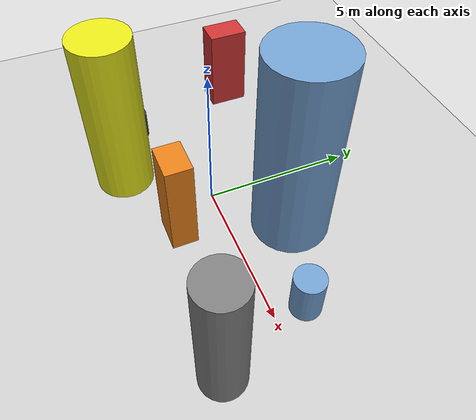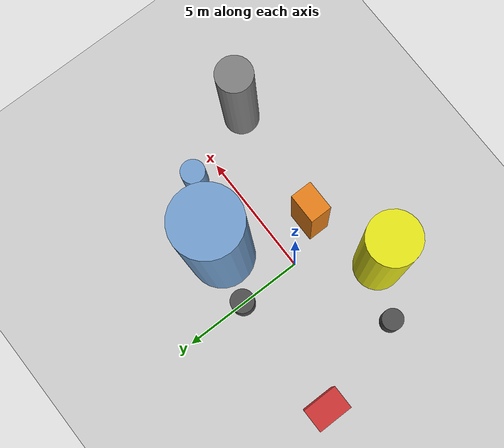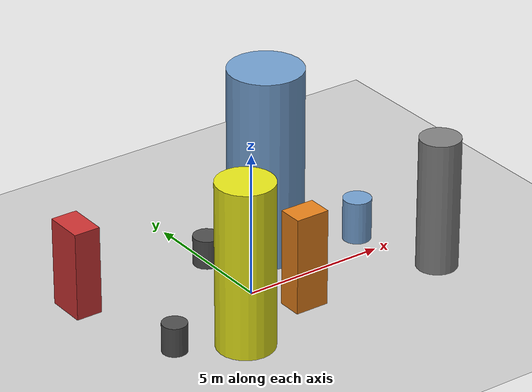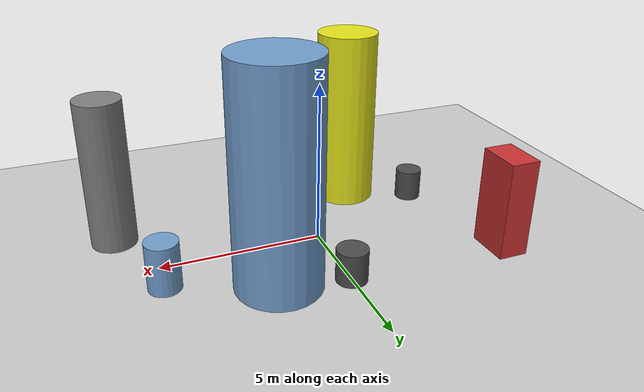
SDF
<?xml version='1.0'?>
<sdf version='1.6'>
  <world name='routeA_rl_v1__support_expansion__rl_train__mixed_3d_low_density_route__000122'>
    <!-- Sun light -->
    <light name='sun' type='directional'>
      <cast_shadows>1</cast_shadows>
      <pose>0 0 10 0 0 0</pose>
      <diffuse>0.8 0.8 0.8 1</diffuse>
      <specular>0.2 0.2 0.2 1</specular>
      <attenuation>
        <range>1000</range>
        <constant>0.9</constant>
        <linear>0.01</linear>
        <quadratic>0.001</quadratic>
      </attenuation>
      <direction>-0.5 0.1 -0.9</direction>
    </light>

    <!-- Ground plane -->
    <model name='ground_plane'>
      <static>1</static>
      <link name='link'>
        <collision name='collision'>
          <geometry>
            <plane>
              <normal>0 0 1</normal>
              <size>100 100</size>
            </plane>
          </geometry>
          <surface>
            <contact>
              <collide_bitmask>65535</collide_bitmask>
              <ode/>
            </contact>
            <friction>
              <ode>
                <mu>100</mu>
                <mu2>50</mu2>
              </ode>
              <torsional><ode/></torsional>
            </friction>
            <bounce/>
          </surface>
          <max_contacts>10</max_contacts>
        </collision>
        <visual name='visual'>
          <cast_shadows>0</cast_shadows>
          <geometry>
            <plane>
              <normal>0 0 1</normal>
              <size>100 100</size>
            </plane>
          </geometry>
          <material>
            <script>
              <uri>file://media/materials/scripts/gazebo.material</uri>
              <n>Gazebo/Grey</n>
            </script>
          </material>
        </visual>
      </link>
    </model>

    <!-- Environment -->
    <magnetic_field>6e-06 2.3e-05 -4.2e-05</magnetic_field>
    <atmosphere type='adiabatic'/>
    <physics name='default_physics' default='0' type='ode'>
      <gravity>0 0 -9.8</gravity>
      <max_step_size>0.004</max_step_size>
      <real_time_factor>1</real_time_factor>
      <real_time_update_rate>250</real_time_update_rate>
    </physics>
    <scene>
      <ambient>0.4 0.4 0.4 1</ambient>
      <background>0.7 0.7 0.7 1</background>
      <shadows>1</shadows>
    </scene>
    <wind/>
    <spherical_coordinates>
      <surface_model>EARTH_WGS84</surface_model>
      <latitude_deg>0</latitude_deg>
      <longitude_deg>0</longitude_deg>
      <elevation>0</elevation>
      <heading_deg>0</heading_deg>
    </spherical_coordinates>

    <!-- ============ OBSTACLES (8) ============ -->
    <model name='low_obs_0'>
      <static>1</static>
      <link name='link'>
        <visual name='visual'>
          <geometry>
            <cylinder>
              <radius>0.4219</radius>
              <length>1.0123</length>
            </cylinder>
          </geometry>
          <material>
            <script>
              <n>Gazebo/DarkGrey</n>
              <uri>file://media/materials/scripts/gazebo.material</uri>
            </script>
            <ambient>0.3 0.3 0.3 1</ambient>
          </material>
        </visual>
        <collision name='collision'>
          <geometry>
            <cylinder>
              <radius>0.4219</radius>
              <length>1.0123</length>
            </cylinder>
          </geometry>
          <max_contacts>10</max_contacts>
          <surface>
            <contact><ode/></contact>
            <bounce/>
            <friction>
              <ode><mu>1</mu><mu2>1</mu2></ode>
              <torsional><ode/></torsional>
            </friction>
          </surface>
        </collision>
      </link>
      <pose>-4.0000 -1.5000 0.5061 0 0 0.0000</pose>
    </model>

    <model name='low_obs_1'>
      <static>1</static>
      <link name='link'>
        <visual name='visual'>
          <geometry>
            <cylinder>
              <radius>0.4690</radius>
              <length>1.0116</length>
            </cylinder>
          </geometry>
          <material>
            <script>
              <n>Gazebo/DarkGrey</n>
              <uri>file://media/materials/scripts/gazebo.material</uri>
            </script>
            <ambient>0.3 0.3 0.3 1</ambient>
          </material>
        </visual>
        <collision name='collision'>
          <geometry>
            <cylinder>
              <radius>0.4690</radius>
              <length>1.0116</length>
            </cylinder>
          </geometry>
          <max_contacts>10</max_contacts>
          <surface>
            <contact><ode/></contact>
            <bounce/>
            <friction>
              <ode><mu>1</mu><mu2>1</mu2></ode>
              <torsional><ode/></torsional>
            </friction>
          </surface>
        </collision>
      </link>
      <pose>0.0000 2.5000 0.5058 0 0 0.0000</pose>
    </model>

    <model name='low_obs_2'>
      <static>1</static>
      <link name='link'>
        <visual name='visual'>
          <geometry>
            <cylinder>
              <radius>0.4885</radius>
              <length>1.4879</length>
            </cylinder>
          </geometry>
          <material>
            <script>
              <n>Gazebo/Blue</n>
              <uri>file://media/materials/scripts/gazebo.material</uri>
            </script>
            <ambient>0.447 0.624 0.812 1</ambient>
          </material>
        </visual>
        <collision name='collision'>
          <geometry>
            <cylinder>
              <radius>0.4885</radius>
              <length>1.4879</length>
            </cylinder>
          </geometry>
          <max_contacts>10</max_contacts>
          <surface>
            <contact><ode/></contact>
            <bounce/>
            <friction>
              <ode><mu>1</mu><mu2>1</mu2></ode>
              <torsional><ode/></torsional>
            </friction>
          </surface>
        </collision>
      </link>
      <pose>5.0000 1.0000 0.7440 0 0 0.0000</pose>
    </model>

    <model name='tall_obs_0'>
      <static>1</static>
      <link name='link'>
        <visual name='visual'>
          <geometry>
            <cylinder>
              <radius>0.9756</radius>
              <length>5.7715</length>
            </cylinder>
          </geometry>
          <material>
            <script>
              <n>Gazebo/Yellow</n>
              <uri>file://media/materials/scripts/gazebo.material</uri>
            </script>
            <ambient>0.9 0.9 0.1 1</ambient>
          </material>
        </visual>
        <collision name='collision'>
          <geometry>
            <cylinder>
              <radius>0.9756</radius>
              <length>5.7715</length>
            </cylinder>
          </geometry>
          <max_contacts>10</max_contacts>
          <surface>
            <contact><ode/></contact>
            <bounce/>
            <friction>
              <ode><mu>1</mu><mu2>1</mu2></ode>
              <torsional><ode/></torsional>
            </friction>
          </surface>
        </collision>
      </link>
      <pose>-2.0000 -2.5000 2.8858 0 0 0.0000</pose>
    </model>

    <model name='tall_obs_1'>
      <static>1</static>
      <link name='link'>
        <visual name='visual'>
          <geometry>
            <cylinder>
              <radius>1.2829</radius>
              <length>6.6901</length>
            </cylinder>
          </geometry>
          <material>
            <script>
              <n>Gazebo/Blue</n>
              <uri>file://media/materials/scripts/gazebo.material</uri>
            </script>
            <ambient>0.447 0.624 0.812 1</ambient>
          </material>
        </visual>
        <collision name='collision'>
          <geometry>
            <cylinder>
              <radius>1.2829</radius>
              <length>6.6901</length>
            </cylinder>
          </geometry>
          <max_contacts>10</max_contacts>
          <surface>
            <contact><ode/></contact>
            <bounce/>
            <friction>
              <ode><mu>1</mu><mu2>1</mu2></ode>
              <torsional><ode/></torsional>
            </friction>
          </surface>
        </collision>
      </link>
      <pose>2.0000 2.0000 3.3451 0 0 0.0000</pose>
    </model>

    <model name='tall_obs_2'>
      <static>1</static>
      <link name='link'>
        <visual name='visual'>
          <geometry>
            <cylinder>
              <radius>0.7041</radius>
              <length>4.6693</length>
            </cylinder>
          </geometry>
          <material>
            <script>
              <n>Gazebo/Grey</n>
              <uri>file://media/materials/scripts/gazebo.material</uri>
            </script>
            <ambient>0.5 0.5 0.5 1</ambient>
          </material>
        </visual>
        <collision name='collision'>
          <geometry>
            <cylinder>
              <radius>0.7041</radius>
              <length>4.6693</length>
            </cylinder>
          </geometry>
          <max_contacts>10</max_contacts>
          <surface>
            <contact><ode/></contact>
            <bounce/>
            <friction>
              <ode><mu>1</mu><mu2>1</mu2></ode>
              <torsional><ode/></torsional>
            </friction>
          </surface>
        </collision>
      </link>
      <pose>6.0000 -2.0000 2.3347 0 0 0.0000</pose>
    </model>

    <model name='med_obs_0'>
      <static>1</static>
      <link name='link'>
        <visual name='visual'>
          <geometry>
            <box>
              <size>0.9161 1.3564 3.0624</size>
            </box>
          </geometry>
          <material>
            <script>
              <n>Gazebo/Red</n>
              <uri>file://media/materials/scripts/gazebo.material</uri>
            </script>
            <ambient>0.8 0.2 0.2 1</ambient>
          </material>
        </visual>
        <collision name='collision'>
          <geometry>
            <box>
              <size>0.9161 1.3564 3.0624</size>
            </box>
          </geometry>
          <max_contacts>10</max_contacts>
          <surface>
            <contact><ode/></contact>
            <bounce/>
            <friction>
              <ode><mu>1</mu><mu2>1</mu2></ode>
              <torsional><ode/></torsional>
            </friction>
          </surface>
        </collision>
      </link>
      <pose>-5.0000 2.5000 1.5312 0 0 0.0000</pose>
    </model>

    <model name='med_obs_1'>
      <static>1</static>
      <link name='link'>
        <visual name='visual'>
          <geometry>
            <box>
              <size>1.1849 0.8583 3.3729</size>
            </box>
          </geometry>
          <material>
            <script>
              <n>Gazebo/Orange</n>
              <uri>file://media/materials/scripts/gazebo.material</uri>
            </script>
            <ambient>0.9 0.5 0.1 1</ambient>
          </material>
        </visual>
        <collision name='collision'>
          <geometry>
            <box>
              <size>1.1849 0.8583 3.3729</size>
            </box>
          </geometry>
          <max_contacts>10</max_contacts>
          <surface>
            <contact><ode/></contact>
            <bounce/>
            <friction>
              <ode><mu>1</mu><mu2>1</mu2></ode>
              <torsional><ode/></torsional>
            </friction>
          </surface>
        </collision>
      </link>
      <pose>1.0000 -1.5000 1.6865 0 0 0.0000</pose>
    </model>

    <!-- GUI camera -->
    <gui fullscreen='0'>
      <camera name='user_camera'>
        <pose>-15 0 18 0 0.85 0.15</pose>
        <view_controller>orbit</view_controller>
        <projection_type>perspective</projection_type>
      </camera>
    </gui>
  </world>
</sdf>
